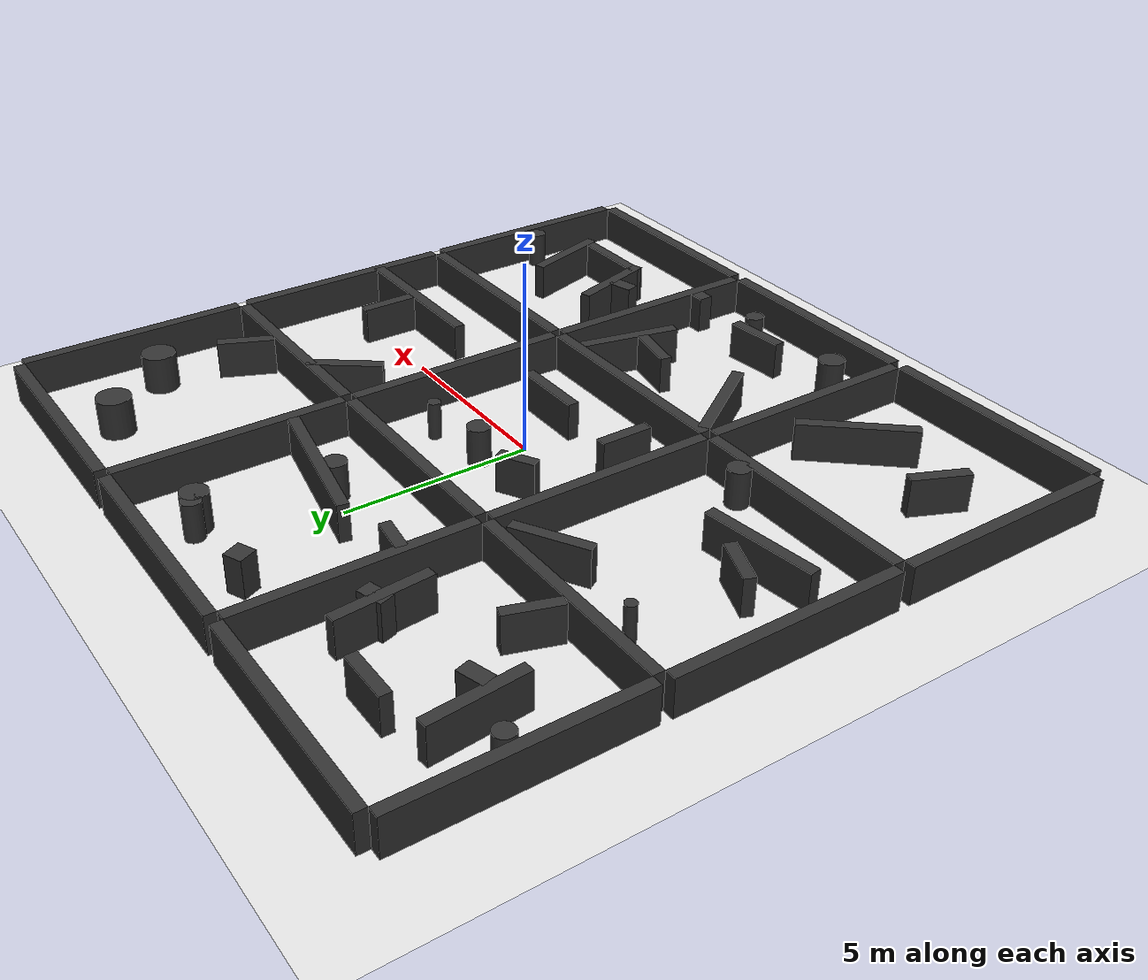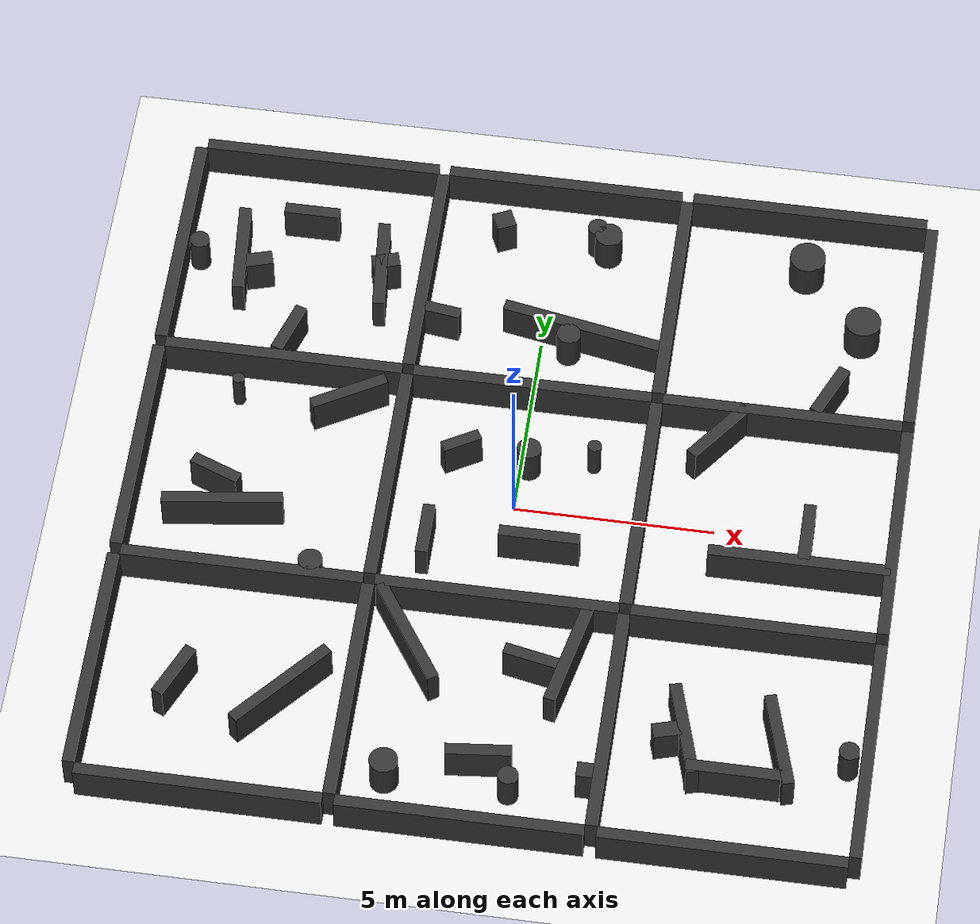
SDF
<?xml version="1.0"?>
<sdf version='1.10'>
  <world name='empty'>

    <physics name='1ms' type='ignored'>
      <max_step_size>0.001</max_step_size>
      <real_time_factor>1</real_time_factor>
      <real_time_update_rate>1000</real_time_update_rate>
    </physics>

    <plugin name='gz::sim::systems::Physics' filename='gz-sim-physics-system'/>
    <plugin name='gz::sim::systems::UserCommands' filename='gz-sim-user-commands-system'/>
    <plugin name='gz::sim::systems::SceneBroadcaster' filename='gz-sim-scene-broadcaster-system'/>
    <plugin name='gz::sim::systems::Contact' filename='gz-sim-contact-system'/>
    <gravity>0 0 -9.8000000000000007</gravity>
    <magnetic_field>5.5644999999999998e-06 2.2875799999999999e-05 -4.2388400000000002e-05</magnetic_field>
    <atmosphere type='adiabatic'/>

    <scene>
      <ambient>0.4 0.4 0.4 1</ambient>
      <background>0.7 0.7 0.7 1</background>
      <shadows>false</shadows>
    </scene>

    <model name='ground_plane'>
      <static>true</static>
      <link name='link'>
        <collision name='collision'>
          <geometry>
            <plane>
              <normal>0 0 1</normal>
              <size>100 100</size>
            </plane>
          </geometry>
          <surface>
            <friction>
              <ode/>
            </friction>
            <bounce/>
            <contact/>
          </surface>
        </collision>
        <visual name='visual'>
          <geometry>
            <plane>
              <normal>0 0 1</normal>
              <size>100 100</size>
            </plane>
          </geometry>
          <material>
            <ambient>0.9 0.9 0.9 1</ambient>
            <diffuse>0.9 0.9 0.9 1</diffuse>
            <specular>0.1 0.1 0.1 1</specular>
            <emissive>0.25 0.25 0.25 1</emissive>
          </material>
        </visual>
        <pose>0 0 0 0 0 0</pose>
        <inertial>
          <pose>0 0 0 0 0 0</pose>
          <mass>1</mass>
          <inertia>
            <ixx>1</ixx>
            <ixy>0</ixy>
            <ixz>0</ixz>
            <iyy>1</iyy>
            <iyz>0</iyz>
            <izz>1</izz>
          </inertia>
        </inertial>
        <enable_wind>false</enable_wind>
      </link>
      <pose>1 0 0 0 0 0</pose>
      <self_collide>false</self_collide>
    </model>

<!--                         room 1                         -->

    <include>
      <uri>model://room_walls</uri>
      <name>room_1</name>
      <pose>0 0 0 0 0 0</pose>
    </include>

    <model name='c1'>
      <pose>1.8 1.5 0.5 0 0 0</pose>
      <link name='cylinder_link'>
        <collision name='cylinder_collision'>
          <geometry><cylinder><radius>0.17</radius><length>1</length></cylinder></geometry>
        </collision>
        <visual name='cylinder_visual'>
          <geometry><cylinder><radius>0.17</radius><length>1</length></cylinder></geometry>
          <material><ambient>0.1 0.1 0.1 1</ambient><diffuse>0.2 0.2 0.2 1</diffuse><specular>0.1 0.1 0.1 1</specular></material>
        </visual>
        <pose>0 0 0 0 0 0</pose>
        <enable_wind>false</enable_wind>
      </link>
      <static>true</static>
      <self_collide>false</self_collide>
    </model>

    <model name='c2'>
      <pose>0.2 1.2 0.5 0 0 0</pose>
      <link name='cylinder_link'>
        <collision name='cylinder_collision'>
          <geometry><cylinder><radius>0.3</radius><length>1</length></cylinder></geometry>
        </collision>
        <visual name='cylinder_visual'>
          <geometry><cylinder><radius>0.3</radius><length>1</length></cylinder></geometry>
          <material><ambient>0.1 0.1 0.1 1</ambient><diffuse>0.2 0.2 0.2 1</diffuse><specular>0.1 0.1 0.1 1</specular></material>
        </visual>
        <pose>0 0 0 0 0 0</pose>
        <enable_wind>false</enable_wind>
      </link>
      <static>true</static>
      <self_collide>false</self_collide>
    </model>

    <model name='b1'>
      <link name="box_link">
        <pose>0.8 -1.3 0.5 0 0 0</pose>
        <collision name="box_collision">
          <geometry><box><size>2 0.3 1</size></box></geometry>
        </collision>
        <visual name="box_visual">
          <geometry><box><size>2 0.3 1</size></box></geometry>
          <material><ambient>0.1 0.1 0.1 1</ambient><diffuse>0.2 0.2 0.2 1</diffuse><specular>0.1 0.1 0.1 1</specular></material>
        </visual>
      </link>
      <static>true</static>
      <self_collide>false</self_collide>
    </model>

    <model name='b2'>
      <link name="box_link">
        <pose>-2 -1.5 0.5 0 0 0</pose>
        <collision name="box_collision">
          <geometry><box><size>0.3 1.4 1</size></box></geometry>
        </collision>
        <visual name="box_visual">
          <geometry><box><size>0.3 1.4 1</size></box></geometry>
          <material><ambient>0.1 0.1 0.1 1</ambient><diffuse>0.2 0.2 0.2 1</diffuse><specular>0.1 0.1 0.1 1</specular></material>
        </visual>
      </link>
      <static>true</static>
      <self_collide>false</self_collide>
    </model>

    <model name='b3'>
      <link name="box_link">
        <pose>-1.5 1.2 0.5 0 0 2.1</pose>
        <collision name="box_collision">
          <geometry><box><size>0.3 1 1</size></box></geometry>
        </collision>
        <visual name="box_visual">
          <geometry><box><size>0.3 1 1</size></box></geometry>
          <material><ambient>0.1 0.1 0.1 1</ambient><diffuse>0.2 0.2 0.2 1</diffuse><specular>0.1 0.1 0.1 1</specular></material>
        </visual>
      </link>
      <static>true</static>
      <self_collide>false</self_collide>
    </model>

<!--                         room 2                         -->

    <include>
      <uri>model://room_walls</uri>
      <name>room_2</name>
      <pose>6.3 0 0 0 0 0</pose>
    </include>

    <model name='b4'>
      <link name="box_link">
        <pose>7.2 -1.15 0.5 0 0 0</pose>
        <collision name="box_collision">
          <geometry><box><size>4.5 0.3 1</size></box></geometry>
        </collision>
        <visual name="box_visual">
          <geometry><box><size>4.5 0.3 1</size></box></geometry>
          <material><ambient>0.1 0.1 0.1 1</ambient><diffuse>0.2 0.2 0.2 1</diffuse><specular>0.1 0.1 0.1 1</specular></material>
        </visual>
      </link>
      <static>true</static>
      <self_collide>false</self_collide>
    </model>

    <model name='b5'>
      <link name="box_link">
        <pose>7.3 -0.3 0.5 0 0 0</pose>
        <collision name="box_collision">
          <geometry><box><size>0.3 1.6 1</size></box></geometry>
        </collision>
        <visual name="box_visual">
          <geometry><box><size>0.3 1.6 1</size></box></geometry>
          <material><ambient>0.1 0.1 0.1 1</ambient><diffuse>0.2 0.2 0.2 1</diffuse><specular>0.1 0.1 0.1 1</specular></material>
        </visual>
      </link>
      <static>true</static>
      <self_collide>false</self_collide>
    </model>

    <model name='b6'>
      <link name="box_link">
        <pose>4.8 2.4 0.5 0 0 2.5</pose>
        <collision name="box_collision">
          <geometry><box><size>0.3 2 1</size></box></geometry>
        </collision>
        <visual name="box_visual">
          <geometry><box><size>0.3 2 1</size></box></geometry>
          <material><ambient>0.1 0.1 0.1 1</ambient><diffuse>0.2 0.2 0.2 1</diffuse><specular>0.1 0.1 0.1 1</specular></material>
        </visual>
      </link>
      <static>true</static>
      <self_collide>false</self_collide>
    </model>

<!--                         room 3                         -->

    <include>
      <uri>model://room_walls</uri>
      <name>room_3</name>
      <pose>-6.3 0 0 0 0 0</pose>
    </include>

    <model name='b7'>
      <link name="box_link">
        <pose>-7.1 -1.3 0.5 0 0 1.7</pose>
        <collision name="box_collision">
          <geometry><box><size>0.3 3.0 1</size></box></geometry>
        </collision>
        <visual name="box_visual">
          <geometry><box><size>0.3 3.0 1</size></box></geometry>
          <material><ambient>0.1 0.1 0.1 1</ambient><diffuse>0.2 0.2 0.2 1</diffuse><specular>0.1 0.1 0.1 1</specular></material>
        </visual>
      </link>
      <static>true</static>
      <self_collide>false</self_collide>
    </model>

    <model name='b8'>
      <link name="box_link">
        <pose>-7.4 -0.45 0.5 0 0 1.2</pose>
        <collision name="box_collision">
          <geometry><box><size>0.3 1.3 1</size></box></geometry>
        </collision>
        <visual name="box_visual">
          <geometry><box><size>0.3 1.3 1</size></box></geometry>
          <material><ambient>0.1 0.1 0.1 1</ambient><diffuse>0.2 0.2 0.2 1</diffuse><specular>0.1 0.1 0.1 1</specular></material>
        </visual>
      </link>
      <static>true</static>
      <self_collide>false</self_collide>
    </model>

    <model name='b9'>
      <link name="box_link">
        <pose>-4.5 2.3 0.5 0 0 2.1</pose>
        <collision name="box_collision">
          <geometry><box><size>0.3 2 1</size></box></geometry>
        </collision>
        <visual name="box_visual">
          <geometry><box><size>0.3 2 1</size></box></geometry>
          <material><ambient>0.1 0.1 0.1 1</ambient><diffuse>0.2 0.2 0.2 1</diffuse><specular>0.1 0.1 0.1 1</specular></material>
        </visual>
      </link>
      <static>true</static>
      <self_collide>false</self_collide>
    </model>

    <model name='c3'>
      <pose>-7.3 2.3 0.5 0 0 0</pose>
      <link name='cylinder_link'>
        <collision name='cylinder_collision'>
          <geometry><cylinder><radius>0.15</radius><length>1</length></cylinder></geometry>
        </collision>
        <visual name='cylinder_visual'>
          <geometry><cylinder><radius>0.15</radius><length>1</length></cylinder></geometry>
          <material><ambient>0.1 0.1 0.1 1</ambient><diffuse>0.2 0.2 0.2 1</diffuse><specular>0.1 0.1 0.1 1</specular></material>
        </visual>
        <pose>0 0 0 0 0 0</pose>
        <enable_wind>false</enable_wind>
      </link>
      <static>true</static>
      <self_collide>false</self_collide>
    </model>

    <model name='c4'>
      <pose>-4.65 -2.8 0.5 0 0 0</pose>
      <link name='cylinder_link'>
        <collision name='cylinder_collision'>
          <geometry><cylinder><radius>0.3</radius><length>1</length></cylinder></geometry>
        </collision>
        <visual name='cylinder_visual'>
          <geometry><cylinder><radius>0.3</radius><length>1</length></cylinder></geometry>
          <material><ambient>0.1 0.1 0.1 1</ambient><diffuse>0.2 0.2 0.2 1</diffuse><specular>0.1 0.1 0.1 1</specular></material>
        </visual>
        <pose>0 0 0 0 0 0</pose>
        <enable_wind>false</enable_wind>
      </link>
      <static>true</static>
      <self_collide>false</self_collide>
    </model>

<!--                         room 4                         -->

    <include>
      <uri>model://room_walls</uri>
      <name>room_4</name>
      <pose>0 6.3 0 0 0 0</pose>
    </include>

    <model name='b10'>
      <link name="box_link">
        <pose>1.0 5.1 0.5 0 0 6.1</pose>
        <collision name="box_collision">
          <geometry><box><size>4.1 0.3 1</size></box></geometry>
        </collision>
        <visual name="box_visual">
          <geometry><box><size>4.1 0.3 1</size></box></geometry>
          <material><ambient>0.1 0.1 0.1 1</ambient><diffuse>0.2 0.2 0.2 1</diffuse><specular>0.1 0.1 0.1 1</specular></material>
        </visual>
      </link>
      <static>true</static>
      <self_collide>false</self_collide>
    </model>

    <model name='b11'>
      <link name="box_link">
        <pose>-2.6 5.1 0.5 0 0 6.15</pose>
        <collision name="box_collision">
          <geometry><box><size>1.0 0.3 1</size></box></geometry>
        </collision>
        <visual name="box_visual">
          <geometry><box><size>1.0 0.3 1</size></box></geometry>
          <material><ambient>0.1 0.1 0.1 1</ambient><diffuse>0.2 0.2 0.2 1</diffuse><specular>0.1 0.1 0.1 1</specular></material>
        </visual>
      </link>
      <static>true</static>
      <self_collide>false</self_collide>
    </model>

    <model name='c5'>
      <pose>1.0 8.2 0.5 0 0 0</pose>
      <link name='cylinder_link'>
        <collision name='cylinder_collision'>
          <geometry><cylinder><radius>0.25</radius><length>1</length></cylinder></geometry>
        </collision>
        <visual name='cylinder_visual'>
          <geometry><cylinder><radius>0.25</radius><length>1</length></cylinder></geometry>
          <material><ambient>0.1 0.1 0.1 1</ambient><diffuse>0.2 0.2 0.2 1</diffuse><specular>0.1 0.1 0.1 1</specular></material>
        </visual>
        <pose>0 0 0 0 0 0</pose>
        <enable_wind>false</enable_wind>
      </link>
      <static>true</static>
      <self_collide>false</self_collide>
    </model>

    <model name='c6'>
      <pose>1.3 8.0 0.5 0 0 0</pose>
      <link name='cylinder_link'>
        <collision name='cylinder_collision'>
          <geometry><cylinder><radius>0.35</radius><length>1</length></cylinder></geometry>
        </collision>
        <visual name='cylinder_visual'>
          <geometry><cylinder><radius>0.35</radius><length>1</length></cylinder></geometry>
          <material><ambient>0.1 0.1 0.1 1</ambient><diffuse>0.2 0.2 0.2 1</diffuse><specular>0.1 0.1 0.1 1</specular></material>
        </visual>
        <pose>0 0 0 0 0 0</pose>
        <enable_wind>false</enable_wind>
      </link>
      <static>true</static>
      <self_collide>false</self_collide>
    </model>

    <model name='c7'>
      <pose>0.7 4.8 0.5 0 0 0</pose>
      <link name='cylinder_link'>
        <collision name='cylinder_collision'>
          <geometry><cylinder><radius>0.3</radius><length>1</length></cylinder></geometry>
        </collision>
        <visual name='cylinder_visual'>
          <geometry><cylinder><radius>0.3</radius><length>1</length></cylinder></geometry>
          <material><ambient>0.1 0.1 0.1 1</ambient><diffuse>0.2 0.2 0.2 1</diffuse><specular>0.1 0.1 0.1 1</specular></material>
        </visual>
        <pose>0 0 0 0 0 0</pose>
        <enable_wind>false</enable_wind>
      </link>
      <static>true</static>
      <self_collide>false</self_collide>
    </model>

    <model name='b12'>
      <link name="box_link">
        <pose>-1.4 8.1 0.5 0 0 2</pose>
        <collision name="box_collision">
          <geometry><box><size>0.5 0.5 1</size></box></geometry>
        </collision>
        <visual name="box_visual">
          <geometry><box><size>0.5 0.5 1</size></box></geometry>
          <material><ambient>0.1 0.1 0.1 1</ambient><diffuse>0.2 0.2 0.2 1</diffuse><specular>0.1 0.1 0.1 1</specular></material>
        </visual>
      </link>
      <static>true</static>
      <self_collide>false</self_collide>
    </model>

<!--                         room 5                         -->

    <include>
      <uri>model://room_walls</uri>
      <name>room_5</name>
      <pose>0 -6.3 0 0 0 0</pose>
    </include>

    <model name='b13'>
      <link name="box_link">
        <pose>-2.0 -4.5 0.5 0 0 5.3</pose>
        <collision name="box_collision">
          <geometry><box><size>3.0 0.3 1</size></box></geometry>
        </collision>
        <visual name="box_visual">
          <geometry><box><size>3.0 0.3 1</size></box></geometry>
          <material><ambient>0.1 0.1 0.1 1</ambient><diffuse>0.2 0.2 0.2 1</diffuse><specular>0.1 0.1 0.1 1</specular></material>
        </visual>
      </link>
      <static>true</static>
      <self_collide>false</self_collide>
    </model>

    <model name='b14'>
      <link name="box_link">
        <pose>2.0 -4.5 0.5 0 0 4.5</pose>
        <collision name="box_collision">
          <geometry><box><size>3.0 0.3 1</size></box></geometry>
        </collision>
        <visual name="box_visual">
          <geometry><box><size>3.0 0.3 1</size></box></geometry>
          <material><ambient>0.1 0.1 0.1 1</ambient><diffuse>0.2 0.2 0.2 1</diffuse><specular>0.1 0.1 0.1 1</specular></material>
        </visual>
      </link>
      <static>true</static>
      <self_collide>false</self_collide>
    </model>

    <model name='b15'>
      <link name="box_link">
        <pose>0.2 -7.6 0.5 0 0 0.1</pose>
        <collision name="box_collision">
          <geometry><box><size>1.6 0.3 1</size></box></geometry>
        </collision>
        <visual name="box_visual">
          <geometry><box><size>1.6 0.3 1</size></box></geometry>
          <material><ambient>0.1 0.1 0.1 1</ambient><diffuse>0.2 0.2 0.2 1</diffuse><specular>0.1 0.1 0.1 1</specular></material>
        </visual>
      </link>
      <static>true</static>
      <self_collide>false</self_collide>
    </model>

    <model name='b16'>
      <link name="box_link">
        <pose>1.1 -4.8 0.5 0 0 -0.2</pose>
        <collision name="box_collision">
          <geometry><box><size>1.4 0.3 1</size></box></geometry>
        </collision>
        <visual name="box_visual">
          <geometry><box><size>1.4 0.3 1</size></box></geometry>
          <material><ambient>0.1 0.1 0.1 1</ambient><diffuse>0.2 0.2 0.2 1</diffuse><specular>0.1 0.1 0.1 1</specular></material>
        </visual>
      </link>
      <static>true</static>
      <self_collide>false</self_collide>
    </model>

    <model name='b17'>
      <link name="box_link">
        <pose>2.8 -7.8 0.5 0 0 0</pose>
        <collision name="box_collision">
          <geometry><box><size>0.4 0.4 1</size></box></geometry>
        </collision>
        <visual name="box_visual">
          <geometry><box><size>0.4 0.4 1</size></box></geometry>
          <material><ambient>0.1 0.1 0.1 1</ambient><diffuse>0.2 0.2 0.2 1</diffuse><specular>0.1 0.1 0.1 1</specular></material>
        </visual>
      </link>
      <static>true</static>
      <self_collide>false</self_collide>
    </model>

    <model name='c8'>
      <pose>1.0 -8.2 0.5 0 0 0</pose>
      <link name='cylinder_link'>
        <collision name='cylinder_collision'>
          <geometry><cylinder><radius>0.25</radius><length>1</length></cylinder></geometry>
        </collision>
        <visual name='cylinder_visual'>
          <geometry><cylinder><radius>0.25</radius><length>1</length></cylinder></geometry>
          <material><ambient>0.1 0.1 0.1 1</ambient><diffuse>0.2 0.2 0.2 1</diffuse><specular>0.1 0.1 0.1 1</specular></material>
        </visual>
        <pose>0 0 0 0 0 0</pose>
        <enable_wind>false</enable_wind>
      </link>
      <static>true</static>
      <self_collide>false</self_collide>
    </model>

    <model name='c9'>
      <pose>-2.0 -8.2 0.5 0 0 0</pose>
      <link name='cylinder_link'>
        <collision name='cylinder_collision'>
          <geometry><cylinder><radius>0.35</radius><length>1</length></cylinder></geometry>
        </collision>
        <visual name='cylinder_visual'>
          <geometry><cylinder><radius>0.35</radius><length>1</length></cylinder></geometry>
          <material><ambient>0.1 0.1 0.1 1</ambient><diffuse>0.2 0.2 0.2 1</diffuse><specular>0.1 0.1 0.1 1</specular></material>
        </visual>
        <pose>0 0 0 0 0 0</pose>
        <enable_wind>false</enable_wind>
      </link>
      <static>true</static>
      <self_collide>false</self_collide>
    </model>

<!--                         room 6                         -->

    <include>
      <uri>model://room_walls</uri>
      <name>room_6</name>
      <pose>6.3 -6.3 0 0 0 0</pose>
    </include>

    <model name='b18'>
      <link name="box_link">
        <pose>5.0 -6.3 0.5 0 0 5.0</pose>
        <collision name="box_collision">
          <geometry><box><size>2.5 0.3 1</size></box></geometry>
        </collision>
        <visual name="box_visual">
          <geometry><box><size>2.5 0.3 1</size></box></geometry>
          <material><ambient>0.1 0.1 0.1 1</ambient><diffuse>0.2 0.2 0.2 1</diffuse><specular>0.1 0.1 0.1 1</specular></material>
        </visual>
      </link>
      <static>true</static>
      <self_collide>false</self_collide>
    </model>

    <model name='b19'>
      <link name="box_link">
        <pose>7.3 -6.3 0.5 0 0 5.0</pose>
        <collision name="box_collision">
          <geometry><box><size>2.5 0.3 1</size></box></geometry>
        </collision>
        <visual name="box_visual">
          <geometry><box><size>2.5 0.3 1</size></box></geometry>
          <material><ambient>0.1 0.1 0.1 1</ambient><diffuse>0.2 0.2 0.2 1</diffuse><specular>0.1 0.1 0.1 1</specular></material>
        </visual>
      </link>
      <static>true</static>
      <self_collide>false</self_collide>
    </model>

    <model name='b20'>
      <link name="box_link">
        <pose>6.3 -7.3 0.5 0 0 0</pose>
        <collision name="box_collision">
          <geometry><box><size>2.3 0.3 1</size></box></geometry>
        </collision>
        <visual name="box_visual">
          <geometry><box><size>2.3 0.3 1</size></box></geometry>
          <material><ambient>0.1 0.1 0.1 1</ambient><diffuse>0.2 0.2 0.2 1</diffuse><specular>0.1 0.1 0.1 1</specular></material>
        </visual>
      </link>
      <static>true</static>
      <self_collide>false</self_collide>
    </model>

    <model name='b21'>
      <link name="box_link">
        <pose>4.6 -6.4 0.5 0 0 5.0</pose>
        <collision name="box_collision">
          <geometry><box><size>0.4 0.7 1</size></box></geometry>
        </collision>
        <visual name="box_visual">
          <geometry><box><size>0.4 0.7 1</size></box></geometry>
          <material><ambient>0.1 0.1 0.1 1</ambient><diffuse>0.2 0.2 0.2 1</diffuse><specular>0.1 0.1 0.1 1</specular></material>
        </visual>
      </link>
      <static>true</static>
      <self_collide>false</self_collide>
    </model>

    <model name='c10'>
      <pose>9.0 -6.4 0.5 0 0 0</pose>
      <link name='cylinder_link'>
        <collision name='cylinder_collision'>
          <geometry><cylinder><radius>0.25</radius><length>1</length></cylinder></geometry>
        </collision>
        <visual name='cylinder_visual'>
          <geometry><cylinder><radius>0.25</radius><length>1</length></cylinder></geometry>
          <material><ambient>0.1 0.1 0.1 1</ambient><diffuse>0.2 0.2 0.2 1</diffuse><specular>0.1 0.1 0.1 1</specular></material>
        </visual>
        <pose>0 0 0 0 0 0</pose>
        <enable_wind>false</enable_wind>
      </link>
      <static>true</static>
      <self_collide>false</self_collide>
    </model>

<!--                         room 7                         -->

    <include>
      <uri>model://room_walls</uri>
      <name>room_7</name>
      <pose>-6.3 6.3 0 0 0 0</pose>
    </include>

    <model name='b22'>
      <link name="box_link">
        <pose>-4.3 6.3 0.5 0 0 4.8</pose>
        <collision name="box_collision">
          <geometry><box><size>2.5 0.3 1</size></box></geometry>
        </collision>
        <visual name="box_visual">
          <geometry><box><size>2.5 0.3 1</size></box></geometry>
          <material><ambient>0.1 0.1 0.1 1</ambient><diffuse>0.2 0.2 0.2 1</diffuse><specular>0.1 0.1 0.1 1</specular></material>
        </visual>
      </link>
      <static>true</static>
      <self_collide>false</self_collide>
    </model>

    <model name='b23'>
      <link name="box_link">
        <pose>-7.9 6.3 0.5 0 0 4.8</pose>
        <collision name="box_collision">
          <geometry><box><size>2.5 0.3 1</size></box></geometry>
        </collision>
        <visual name="box_visual">
          <geometry><box><size>2.5 0.3 1</size></box></geometry>
          <material><ambient>0.1 0.1 0.1 1</ambient><diffuse>0.2 0.2 0.2 1</diffuse><specular>0.1 0.1 0.1 1</specular></material>
        </visual>
      </link>
      <static>true</static>
      <self_collide>false</self_collide>
    </model>

    <model name='b24'>
      <link name="box_link">
        <pose>-6.3 7.7 0.5 0 0 0</pose>
        <collision name="box_collision">
          <geometry><box><size>1.4 0.3 1</size></box></geometry>
        </collision>
        <visual name="box_visual">
          <geometry><box><size>1.4 0.3 1</size></box></geometry>
          <material><ambient>0.1 0.1 0.1 1</ambient><diffuse>0.2 0.2 0.2 1</diffuse><specular>0.1 0.1 0.1 1</specular></material>
        </visual>
      </link>
      <static>true</static>
      <self_collide>false</self_collide>
    </model>

    <model name='b25'>
      <link name="box_link">
        <pose>-4.2 6.4 0.5 0 0 5.0</pose>
        <collision name="box_collision">
          <geometry><box><size>0.4 0.7 1</size></box></geometry>
        </collision>
        <visual name="box_visual">
          <geometry><box><size>0.4 0.7 1</size></box></geometry>
          <material><ambient>0.1 0.1 0.1 1</ambient><diffuse>0.2 0.2 0.2 1</diffuse><specular>0.1 0.1 0.1 1</specular></material>
        </visual>
      </link>
      <static>true</static>
      <self_collide>false</self_collide>
    </model>

    <model name='b26'>
      <link name="box_link">
        <pose>-7.4 6.0 0.5 0 0 5.0</pose>
        <collision name="box_collision">
          <geometry><box><size>0.4 0.7 1</size></box></geometry>
        </collision>
        <visual name="box_visual">
          <geometry><box><size>0.4 0.7 1</size></box></geometry>
          <material><ambient>0.1 0.1 0.1 1</ambient><diffuse>0.2 0.2 0.2 1</diffuse><specular>0.1 0.1 0.1 1</specular></material>
        </visual>
      </link>
      <static>true</static>
      <self_collide>false</self_collide>
    </model>

    <model name='b27'>
      <link name="box_link">
        <pose>-6.3 4 0.5 0 0 4.4</pose>
        <collision name="box_collision">
          <geometry><box><size>1.4 0.3 1</size></box></geometry>
        </collision>
        <visual name="box_visual">
          <geometry><box><size>1.4 0.3 1</size></box></geometry>
          <material><ambient>0.1 0.1 0.1 1</ambient><diffuse>0.2 0.2 0.2 1</diffuse><specular>0.1 0.1 0.1 1</specular></material>
        </visual>
      </link>
      <static>true</static>
      <self_collide>false</self_collide>
    </model>

    <model name='c11'>
      <pose>-9.0 6.4 0.5 0 0 0</pose>
      <link name='cylinder_link'>
        <collision name='cylinder_collision'>
          <geometry><cylinder><radius>0.25</radius><length>1</length></cylinder></geometry>
        </collision>
        <visual name='cylinder_visual'>
          <geometry><cylinder><radius>0.25</radius><length>1</length></cylinder></geometry>
          <material><ambient>0.1 0.1 0.1 1</ambient><diffuse>0.2 0.2 0.2 1</diffuse><specular>0.1 0.1 0.1 1</specular></material>
        </visual>
        <pose>0 0 0 0 0 0</pose>
        <enable_wind>false</enable_wind>
      </link>
      <static>true</static>
      <self_collide>false</self_collide>
    </model>

<!--                         room 8                         -->

    <include>
      <uri>model://room_walls</uri>
      <name>room_8</name>
      <pose>6.3 6.3 0 0 0 0</pose>
    </include>

    <model name='b28'>
      <link name="box_link">
        <pose>7.4 4 0.5 0 0 4.3</pose>
        <collision name="box_collision">
          <geometry><box><size>1.5 0.3 1</size></box></geometry>
        </collision>
        <visual name="box_visual">
          <geometry><box><size>1.5 0.3 1</size></box></geometry>
          <material><ambient>0.1 0.1 0.1 1</ambient><diffuse>0.2 0.2 0.2 1</diffuse><specular>0.1 0.1 0.1 1</specular></material>
        </visual>
      </link>
      <static>true</static>
      <self_collide>false</self_collide>
    </model>

    <model name='c12'>
      <pose>8 6.2 0.5 0 0 0</pose>
      <link name='cylinder_link'>
        <collision name='cylinder_collision'>
          <geometry><cylinder><radius>0.45</radius><length>1</length></cylinder></geometry>
        </collision>
        <visual name='cylinder_visual'>
          <geometry><cylinder><radius>0.45</radius><length>1</length></cylinder></geometry>
          <material><ambient>0.1 0.1 0.1 1</ambient><diffuse>0.2 0.2 0.2 1</diffuse><specular>0.1 0.1 0.1 1</specular></material>
        </visual>
        <pose>0 0 0 0 0 0</pose>
        <enable_wind>false</enable_wind>
      </link>
      <static>true</static>
      <self_collide>false</self_collide>
    </model>

    <model name='c13'>
      <pose>6.4 8 0.5 0 0 0</pose>
      <link name='cylinder_link'>
        <collision name='cylinder_collision'>
          <geometry><cylinder><radius>0.45</radius><length>1</length></cylinder></geometry>
        </collision>
        <visual name='cylinder_visual'>
          <geometry><cylinder><radius>0.45</radius><length>1</length></cylinder></geometry>
          <material><ambient>0.1 0.1 0.1 1</ambient><diffuse>0.2 0.2 0.2 1</diffuse><specular>0.1 0.1 0.1 1</specular></material>
        </visual>
        <pose>0 0 0 0 0 0</pose>
        <enable_wind>false</enable_wind>
      </link>
      <static>true</static>
      <self_collide>false</self_collide>
    </model>

<!--                         room 9                         -->

    <include>
      <uri>model://room_walls</uri>
      <name>room_9</name>
      <pose>-6.3 -6.3 0 0 0 0</pose>
    </include>

    <model name='b29'>
      <link name="box_link">
        <pose>-7.4 -6.4 0.5 0 0 4.3</pose>
        <collision name="box_collision">
          <geometry><box><size>1.5 0.3 1</size></box></geometry>
        </collision>
        <visual name="box_visual">
          <geometry><box><size>1.5 0.3 1</size></box></geometry>
          <material><ambient>0.1 0.1 0.1 1</ambient><diffuse>0.2 0.2 0.2 1</diffuse><specular>0.1 0.1 0.1 1</specular></material>
        </visual>
      </link>
      <static>true</static>
      <self_collide>false</self_collide>
    </model>

    <model name='b30'>
      <link name="box_link">
        <pose>-4.8 -6.4 0.5 0 0 4.0</pose>
        <collision name="box_collision">
          <geometry><box><size>3 0.3 1</size></box></geometry>
        </collision>
        <visual name="box_visual">
          <geometry><box><size>3 0.3 1</size></box></geometry>
          <material><ambient>0.1 0.1 0.1 1</ambient><diffuse>0.2 0.2 0.2 1</diffuse><specular>0.1 0.1 0.1 1</specular></material>
        </visual>
      </link>
      <static>true</static>
      <self_collide>false</self_collide>
    </model>

<!--                        lighting                        -->

    <light name='sun' type='directional'>
      <pose>0 0 30 0 0 0</pose>
      <cast_shadows>false</cast_shadows>
      <intensity>1</intensity>
      <direction>-0.5 0.1 -0.9</direction>
      <diffuse>0.8 0.8 0.8 1</diffuse>
      <specular>0.2 0.2 0.2 1</specular>
      <attenuation>
        <range>1000</range>
        <linear>0.01</linear>
        <constant>0.9</constant>
        <quadratic>0.001</quadratic>
      </attenuation>
      <spot>
        <inner_angle>0</inner_angle>
        <outer_angle>0</outer_angle>
        <falloff>0</falloff>
      </spot>
    </light>

  </world>
</sdf>

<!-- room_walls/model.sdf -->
<sdf version="1.10">

    <model name="walls">

      <pose>0 0 0 0 0 0</pose>

      <!-- Top wall -->
      <link name="top_wall">
        <pose>3.15 0 0.5 0 0 0</pose>
        <collision name="top_wall_collision">
          <geometry><box><size>0.3 6 1</size></box></geometry>
        </collision>
        <visual name="top_wall_visual">
          <geometry><box><size>0.3 6 1</size></box></geometry>
          <material><ambient>0.1 0.1 0.1 1</ambient><diffuse>0.2 0.2 0.2 1</diffuse><specular>0.1 0.1 0.1 1</specular></material>
        </visual>
      </link>

      <!-- Bottom wall -->
      <link name="bottom_wall">
        <pose>-3.15 0 0.5 0 0 0</pose>
        <collision name="bottom_wall_collision">
          <geometry><box><size>0.3 6 1</size></box></geometry>
        </collision>
        <visual name="bottom_wall_visual">
          <geometry><box><size>0.3 6 1</size></box></geometry>
          <material><ambient>0.1 0.1 0.1 1</ambient><diffuse>0.2 0.2 0.2 1</diffuse><specular>0.1 0.1 0.1 1</specular></material>
        </visual>
      </link>

      <!-- Left wall -->
      <link name="left_wall">
        <pose>0 -3.15 0.5 0 0 0</pose>
        <collision name="left_wall_collision">
          <geometry><box><size>6 0.3 1</size></box></geometry>
        </collision>
        <visual name="left_wall_visual">
          <geometry><box><size>6 0.3 1</size></box></geometry>
          <material><ambient>0.1 0.1 0.1 1</ambient><diffuse>0.2 0.2 0.2 1</diffuse><specular>0.1 0.1 0.1 1</specular></material>
        </visual>
      </link>

      <!-- Right wall -->
      <link name="right_wall">
        <pose>0 3.15 0.5 0 0 0</pose>
        <collision name="right_wall_collision">
          <geometry><box><size>6 0.3 1</size></box></geometry>
        </collision>
        <visual name="right_wall_visual">
          <geometry><box><size>6 0.3 1</size></box></geometry>
          <material><ambient>0.1 0.1 0.1 1</ambient><diffuse>0.2 0.2 0.2 1</diffuse><specular>0.1 0.1 0.1 1</specular></material>
        </visual>
      </link>

      <static>true</static>
      <self_collide>false</self_collide>

    </model>

</sdf>
